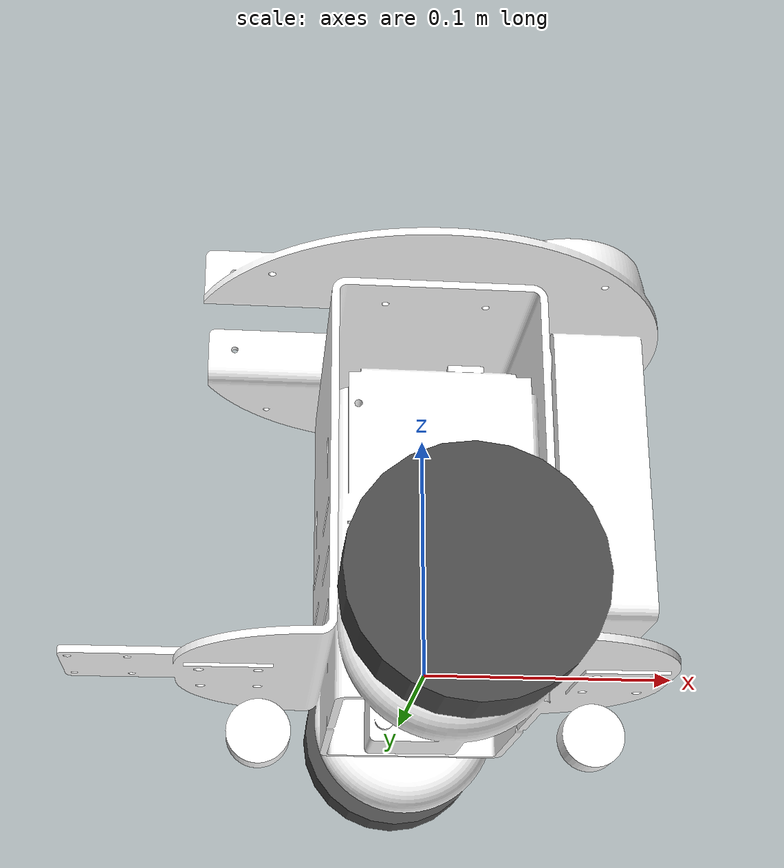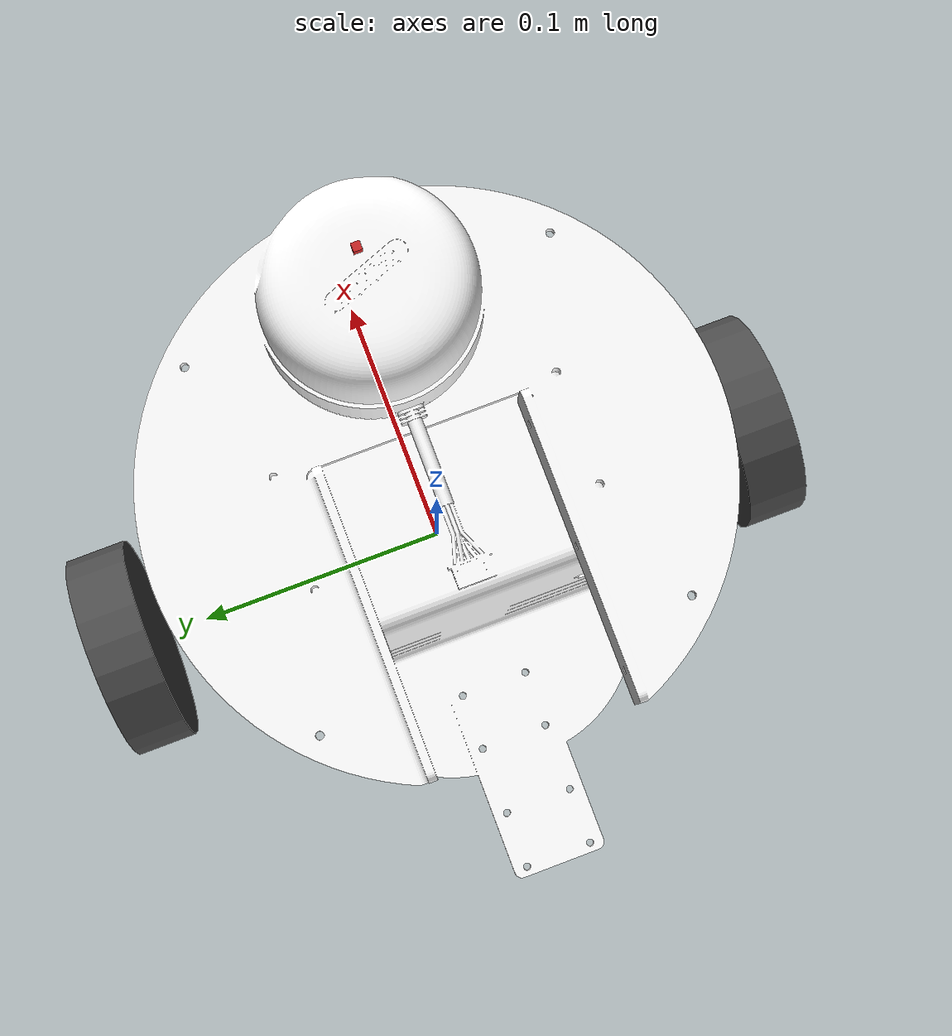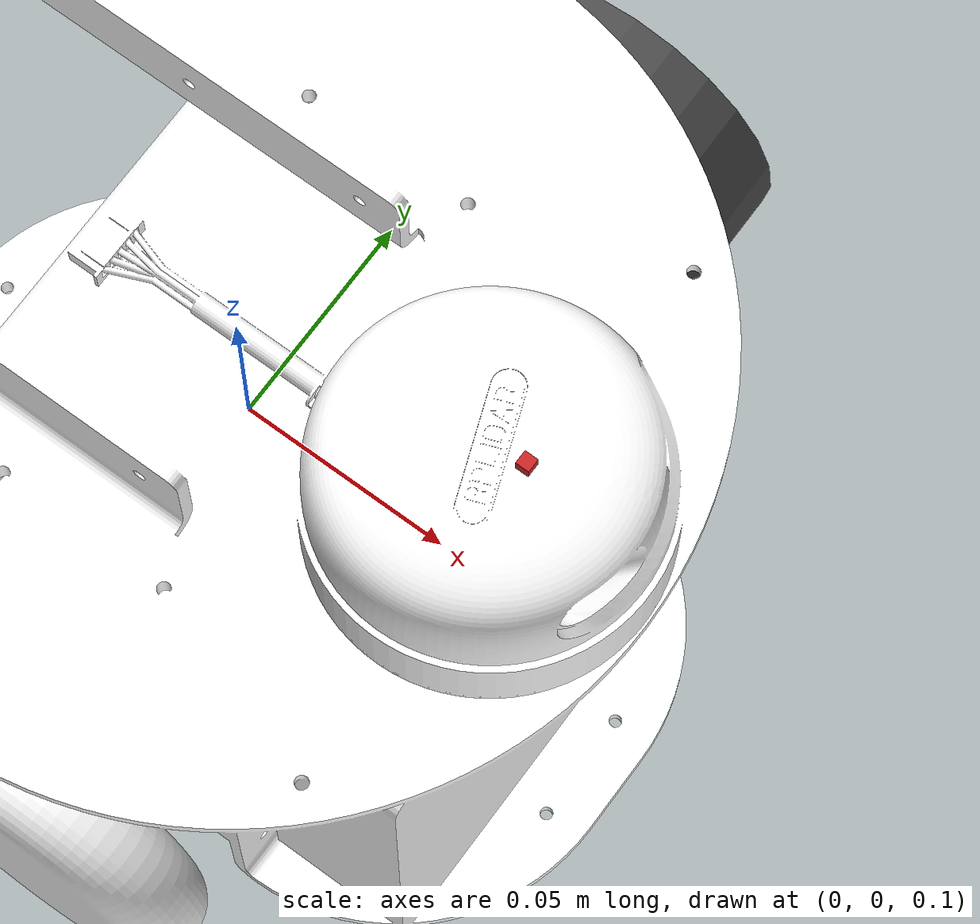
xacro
<?xml version="1.0"?>

<robot name="som_o_robot_20cm" xmlns:xacro="http://www.ros.org/wiki/xacro">

  <!-- Constants -->
  <xacro:include filename="$(find som_o_description)/urdf/30cm/constants.xacro" />

  <!-- Material (Color) -->
  <xacro:include filename="$(find som_o_description)/urdf/shared_components/material.xacro" />

  <!-- Body of Robot -->
      <!-- Footprint (require Base Link inclusion) -->
      <xacro:include filename="$(find som_o_description)/urdf/30cm/base_footprint.xacro" />

      <!-- Base Link (Main chassis) -->
      <xacro:include filename="$(find som_o_description)/urdf/30cm/base_link.xacro" />

      <!-- Wheels (Plugin) -->
      <xacro:include filename="$(find som_o_description)/urdf/shared_components/wheel.xacro" />
      <wheel fb="front" lr="right" parent="base_footprint" translateX="0" translateY="1" flipY="1" />
      <wheel fb="front" lr="left" parent="base_footprint" translateX="0" translateY="-1" flipY="1" />

      <!-- LIDAR (Range Fider) -->
      <xacro:include filename="$(find som_o_description)/urdf/shared_components/lidar.xacro" />

      <!-- Stereo Camera -->
      <xacro:include filename="$(find som_o_description)/urdf/shared_components/multicamera.xacro" />

      <!-- IMU -->
      <xacro:include filename="$(find som_o_description)/urdf/shared_components/imu.xacro" />

  <!-- Gazebo + ROS Differential Drive plugin -->
  <xacro:include filename="$(find som_o_description)/urdf/shared_components/diff_drive_plugin.xacro" />

</robot>

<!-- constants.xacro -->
<robot name="som_o_robot_30cm" xmlns:xacro="http://www.ros.org/wiki/xacro">

    <!-- Constants (m-kg-s-radians unit system) -->
    <xacro:property name="M_PI" value="3.1415926535897931"/>
    <xacro:property name="M_PI_2" value="1.570796327"/>
    <xacro:property name="DEG_TO_RAD" value="0.017453293"/>

    <!-- Meterials properties -->
    <xacro:property name="metal_sheet_thickness" value="0.003"/>

    <!-- Base Link Constants -->
    <!-- Inertial components , Mass (kgs) -->
    <xacro:property name="base_mass" value="0.2"/>
    <xacro:property name="base_radius" value="0.30"/>
    <xacro:property name="base_height" value="0.22"/>
    <xacro:property name="base_link_visual_mesh_offset_z" value="0.55"/>

    <!-- Chassis Collsion -->
    <xacro:property name="base_col_box_height" value="0.183091"/>
    <xacro:property name="base_col_box_length" value="0.200"/>
    <xacro:property name="base_col_box_width" value="0.230"/>

    <!-- Wheels -->
    <xacro:property name="wheel_radius" value="0.042" />
    <xacro:property name="wheel_height" value="0.024" />
    <xacro:property name="wheel_mass" value="2.5" /> <!-- in kg-->
    <xacro:property name="gap_to_wheel" value="0.017" />
    <xacro:property name="base_x_origin_to_wheel_origin" value="0" />
    <xacro:property name="base_y_origin_to_wheel_origin" value="${base_col_box_width/2 +gap_to_wheel}" />
    <xacro:property name="base_z_origin_to_wheel_origin" value="0.00" />

    <!-- Lidar Specs -->
    <xacro:property name="lidar_size" value="0.005" />
    <xacro:property name="base_link_to_lidar_x" value="0.07" />
    <xacro:property name="base_link_to_lidar_y" value="0.000" />
    <xacro:property name="base_link_to_lidar_z" value="0.183091" />
    <xacro:property name="optical_z_offset" value="0.03080" />

    <!-- Macro for calculating inertia of cylinder -->
    <xacro:macro name="cylinder_inertia" params="m r h">
        <inertia ixx="${m*(3*r*r+h*h)/12}" ixy="0" ixz="0"
          iyy="${m*(3*r*r+h*h)/12}" iyz="0" izz="${m*r*r/2}"/>
    </xacro:macro>

</robot>

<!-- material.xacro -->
<robot name="material" xmlns:xacro="http://www.ros.org/wiki/xacro">

    <material name="Black">
        <color rgba="0.0 0.0 0.0 1.0" />
    </material>
    <material name="Red">
        <color rgba="0.8 0.0 0.0 1.0" />
    </material>
    <material name="White">
        <color rgba="1.0 1.0 1.0 1.0" />
    </material>
    <material name="Blue">
        <color rgba="0.0 0.0 0.8 1.0" />
    </material>

</robot>

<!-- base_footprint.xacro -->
<robot name="som_o_robot_30cm" xmlns:xacro="http://www.ros.org/wiki/xacro">

    <!-- Base_Footprint (ground mark)  -->
    <link name="base_footprint">

    <inertial>
        <mass value="0.0001" />
        <origin xyz="0 0 0" />
        <inertia ixx="0.0001" ixy="0.0" ixz="0.0" iyy="0.0001" iyz="0.0" izz="0.0001" />
    </inertial>

    <visual>
        <origin xyz="0 0 0" rpy="0 0 0" />
        <geometry>
            <box size="0.001 0.001 0.001" />
        </geometry>
    </visual>
    </link>

    <joint name="base_footprint_joint" type="fixed">
        <origin xyz="0 0 -${wheel_radius}" rpy="0 0 0" />
        <parent link="base_footprint" />
        <child link="base_link" />
    </joint>

    <gazebo reference="base_footprint">
        <turnGravityOff>false</turnGravityOff>
    </gazebo>

</robot>

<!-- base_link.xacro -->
<robot name="som_o_robot_30cm" xmlns:xacro="http://www.ros.org/wiki/xacro">

  <!-- Base_Link (Action body/chassis of the robot) -->
  <link name="base_link">
    <inertial>
        <mass value="${base_mass}" />
        <origin xyz="0 0 0" />
        <!--The 3x3 rotational inertia matrix. -->
        <cylinder_inertia m="${base_mass}" r="${base_radius}" h="${base_height}" />
    </inertial>

    <!-- Base_Link Visual (mesh from STL) -->
    <visual>
        <origin xyz="0 0 0" rpy="0 0 0" />
        <geometry>
            <mesh filename="package://som_o_description/meshes/obodroid1.stl"/>
        </geometry>
        <material name="White" />
    </visual>

    <!-- Base_Link Collision Model -->
    <collision>
        <origin xyz="0 0 ${base_col_box_height/2}" rpy="0 0 0 " />
        <geometry>
            <box size="${base_col_box_length} ${base_col_box_width} ${base_col_box_height}" />
        </geometry>
    </collision>
  </link>

  <gazebo reference="base_link">
      <material>Gazebo/White</material>
      <turnGravityOff>false</turnGravityOff>
  </gazebo>

</robot>

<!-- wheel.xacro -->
<robot name="wheel" xmlns:xacro="http://www.ros.org/wiki/xacro">

<xacro:macro name="wheel" params="fb lr parent translateX translateY flipY"> <!--fb : front, back ; lr: left, right -->
  <link name="${fb}_${lr}_wheel">
    <visual>
      <origin xyz="0 0 0" rpy="${flipY*M_PI/2} 0  0 " />
      <geometry>
        <cylinder length="${wheel_height}" radius="${wheel_radius}" />
      </geometry>
      <material name="DarkGray" />
    </visual>
    <collision>
      <origin xyz="0 0 0" rpy="${flipY*M_PI/2} 0 0 " />
      <geometry>
        <cylinder length="${wheel_height}" radius="${wheel_radius}" />
      </geometry>
    </collision>
    <inertial>
      <mass value="${wheel_mass}" />
      <origin xyz="0 0 0" />
      <cylinder_inertia  m="${wheel_mass}" r="${wheel_radius}" h="${wheel_height}" />
    </inertial>
  </link>

  <gazebo reference="${fb}_${lr}_wheel">
    <mu1 value="1.0"/>
    <mu2 value="1.0"/>
    <kp  value="10000000.0" />
    <kd  value="1.0" />
    <fdir1 value="1 0 0"/>
    <material>Gazebo/Grey</material>
    <turnGravityOff>false</turnGravityOff>
  </gazebo>

  <joint name="${fb}_${lr}_wheel_joint" type="continuous">
    <parent link="${parent}"/>
    <child link="${fb}_${lr}_wheel"/>
    <origin xyz="${translateX * base_x_origin_to_wheel_origin} ${translateY * base_y_origin_to_wheel_origin} ${base_z_origin_to_wheel_origin}" rpy="0 0 0" />
    <axis xyz="0 1 0" rpy="0  0" />
    <limit effort="100" velocity="100"/>
    <joint_properties damping="0.0" friction="0.0"/>
  </joint>

  <!-- Transmission is important to link the joints and the controller -->
  <transmission name="${fb}_${lr}_wheel_joint_trans">
    <type>transmission_interface/SimpleTransmission</type>
    <joint name="${fb}_${lr}_wheel_joint" />
    <actuator name="${fb}_${lr}_wheel_joint_motor">
      <hardwareInterface>EffortJointInterface</hardwareInterface>
      <mechanicalReduction>1</mechanicalReduction>
    </actuator>
  </transmission>

</xacro:macro>
</robot>

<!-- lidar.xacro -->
<robot name="rp-lidar" xmlns:xacro="http://www.ros.org/wiki/xacro">

<!-- Lidar Sensors Model -->
    <link name="lidar_link">
    <visual>
        <origin xyz="0 0 0" rpy="0 0 0" />
        <geometry>
            <box size="${lidar_size} ${lidar_size} ${lidar_size}" />
        </geometry>
        <material name="Blue" />
    </visual>
    </link>

    <joint name="lidar_joint" type="fixed">
        <origin xyz="${base_link_to_lidar_x}
          ${base_link_to_lidar_y}
          ${base_link_to_lidar_z + optical_z_offset + metal_sheet_thickness}"
          rpy="0 0 0" />
        <parent link="base_link" />
        <child link="lidar_link" />
    </joint>

    <gazebo reference="lidar_link">
        <material>Gazebo/Blue</material>
        <turnGravityOff>false</turnGravityOff>
        <sensor type="ray" name="lidar_sensor">
            <pose>${lidar_size/2} 0 0 0 0 0</pose>
            <visualize>true</visualize>
            <update_rate>40</update_rate>
            <ray>
                <scan>
                    <horizontal>
                        <samples>360</samples>
                        <resolution>1</resolution>
                        <min_angle>-2</min_angle>
                        <max_angle>2</max_angle>

                    </horizontal>
                </scan>
                <range>
                    <min>0.10</min>
                    <max>6</max>
                    <resolution>0.001</resolution>
                </range>
                <noise>
                  <type>gaussian</type>
                  <mean>0.01</mean>
                  <stddev>0.015</stddev>
                </noise>
            </ray>
            <plugin name="gazebo_ros_head_hokuyo_controller" filename="libgazebo_ros_laser.so">
                <topicName>/scan</topicName>
                <frameName>lidar_link</frameName>
            </plugin>
        </sensor>
    </gazebo>
</robot>

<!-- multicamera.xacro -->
<robot name="multicam" xmlns:xacro="http://www.ros.org/wiki/xacro">

  <!-- MultiCamera -->
  <link name="multicam_link_left">
  <visual>
      <origin xyz="0 0.07 0" rpy="0 0 0" />
      <geometry>
          <box size="0.003 0.003 0.003" />
      </geometry>
  </visual>
  </link>

  <link name="multicam_link">
  <visual>
      <origin xyz="0 0 0" rpy="0 0 0" />
      <geometry>
          <box size="0.003 0.003 0.003" />
      </geometry>
  </visual>
  </link>

  <link name="multicam_link_right">
  <visual>
      <origin xyz="0 -0.07 0" rpy="0 0 0" />
      <geometry>
          <box size="0.003 0.003 0.003" />
      </geometry>
  </visual>
  </link>

  <joint name="lidar_joint_to_multicam" type="fixed">
      <origin xyz="0 0 0.015" rpy="0 0 0" />
      <parent link="lidar_link" />
      <child link="multicam_link" />
  </joint>

  <joint name="joint_to_right_multicam" type="fixed">
      <origin xyz="0 0.07 0" rpy="0 0 0" />
      <parent link="multicam_link" />
      <child link="multicam_link_right" />
  </joint>

  <joint name="joint_to_left_multicam" type="fixed">
      <origin xyz="0 -0.07 0" rpy="0 0 0" />
      <parent link="multicam_link" />
      <child link="multicam_link_left" />
  </joint>

  <gazebo reference="multicam_link">
      <turnGravityOff>false</turnGravityOff>
      <material>Gazebo/Grey</material>
  </gazebo>

  <gazebo reference="multicam_link_right">
      <turnGravityOff>false</turnGravityOff>
      <material>Gazebo/Red</material>
  </gazebo>

  <gazebo reference="multicam_link_left">
      <turnGravityOff>false</turnGravityOff>
      <material>Gazebo/Red</material>
  </gazebo>

  <!-- Gazebo Plugin -->
  <gazebo reference="multicam_link">
    <sensor type="multicamera" name="stereo_camera">
      <update_rate>30.0</update_rate>

      <camera name="left">
        <pose>0 0.07 0 0 0 0</pose>
        <horizontal_fov>1.3962634</horizontal_fov>
        <image>
          <width>800</width>
          <height>800</height>
          <format>R8G8B8</format>
        </image>
        <clip>
          <near>0.02</near>
          <far>300</far>
        </clip>
        <noise>
          <type>gaussian</type>
          <mean>0.0</mean>
          <stddev>0.007</stddev>
        </noise>
      </camera>

      <camera name="right">
        <pose>0 -0.07 0 0 0 0</pose>
        <horizontal_fov>1.3962634</horizontal_fov>
        <image>
          <width>800</width>
          <height>800</height>
          <format>R8G8B8</format>
        </image>
        <clip>
          <near>0.02</near>
          <far>300</far>
        </clip>
        <noise>
          <type>gaussian</type>
          <mean>0.0</mean>
          <stddev>0.007</stddev>
        </noise>
      </camera>

      <plugin name="stereo_camera_controller" filename="libgazebo_ros_multicamera.so">
        <alwaysOn>true</alwaysOn>
        <updateRate>0.0</updateRate>
        <cameraName>multisense_sl/camera</cameraName>
        <imageTopicName>image_raw</imageTopicName>
        <cameraInfoTopicName>camera_info</cameraInfoTopicName>
        <frameName>left_camera_optical_frame</frameName>
        <rightFrameName>right_camera_optical_frame</rightFrameName>
        <hackBaseline>0.07</hackBaseline>
        <distortionK1>0.0</distortionK1>
        <distortionK2>0.0</distortionK2>
        <distortionK3>0.0</distortionK3>
        <distortionT1>0.0</distortionT1>
        <distortionT2>0.0</distortionT2>
      </plugin>
    </sensor>
  </gazebo>

</robot>

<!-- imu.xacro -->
<robot name="imu" xmlns:xacro="http://www.ros.org/wiki/xacro">

    <joint name="imu_joint" type="fixed">
       <axis xyz="1 0 0"/>
       <origin xyz="0 0 0.19"/>
       <parent link="base_link"/>
       <child link="imu_link"/>
    </joint>

    <link name="imu_link">
     <inertial>
       <mass value="0.001"/>
       <origin rpy="0 0 0" xyz="0 0 0"/>
       <inertia ixx="0.0001" ixy="0" ixz="0" iyy="0.000001" iyz="0" izz="0.0001"/>
     </inertial>
     <visual>
       <origin rpy="0 0 0" xyz="0 0 0"/>
       <geometry>
         <box size="0.001 0.001 0.001"/>
       </geometry>
     </visual>
     <collision>
       <origin rpy="0 0 0" xyz="0 0 0"/>
       <geometry>
         <box size=".001 .001 .001"/>
       </geometry>
     </collision>
    </link>

    <gazebo>
      <plugin name="imu_controller" filename="libgazebo_ros_imu.so">
       <alwaysOn>true</alwaysOn>
       <updateRate>50.0</updateRate>
       <bodyName>imu_link</bodyName>
       <topicName>imu_data</topicName>
       <gaussianNoise>2.89e-08</gaussianNoise>
       <xyzOffsets>0 0 0</xyzOffsets>
       <rpyOffsets>0 0 0</rpyOffsets>
     </plugin>
    </gazebo>

</robot>
